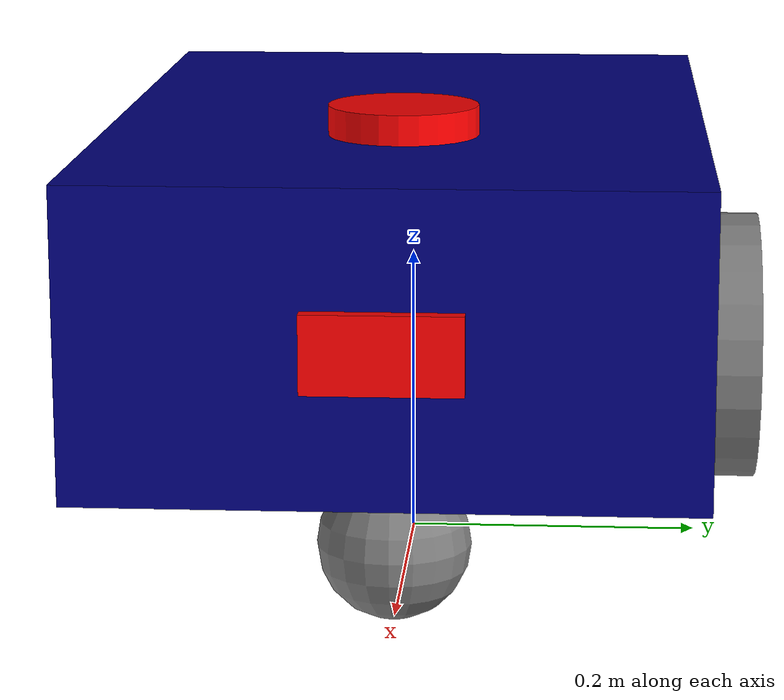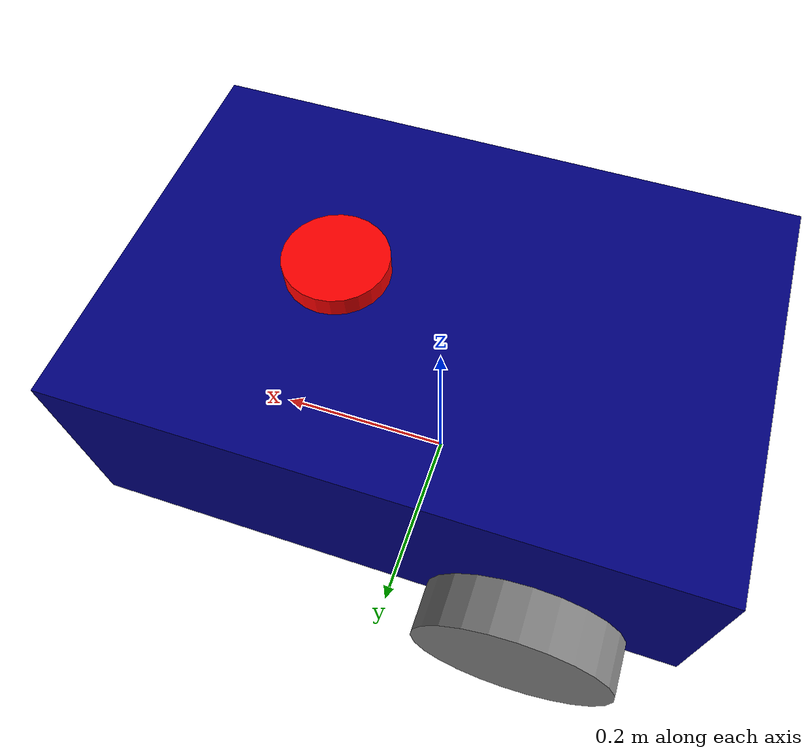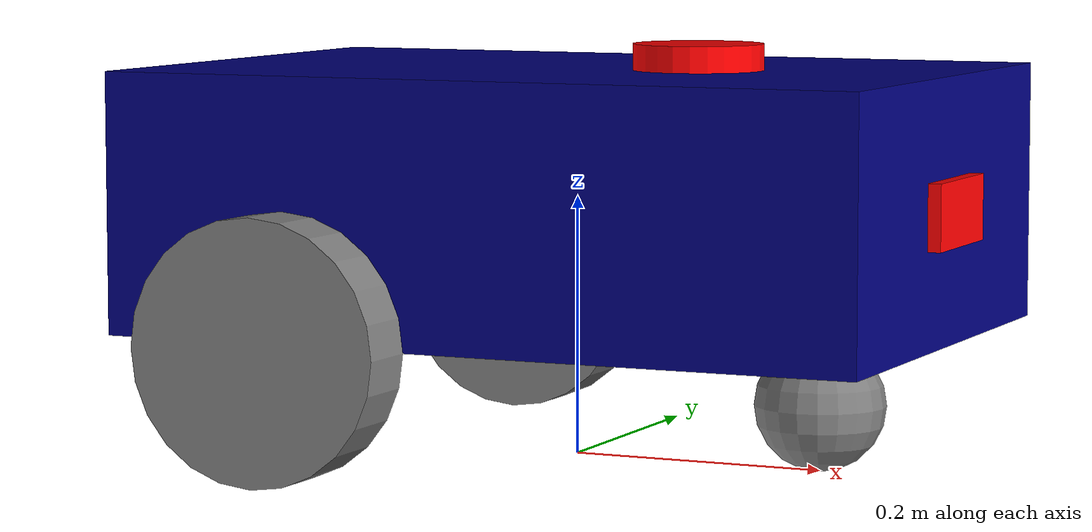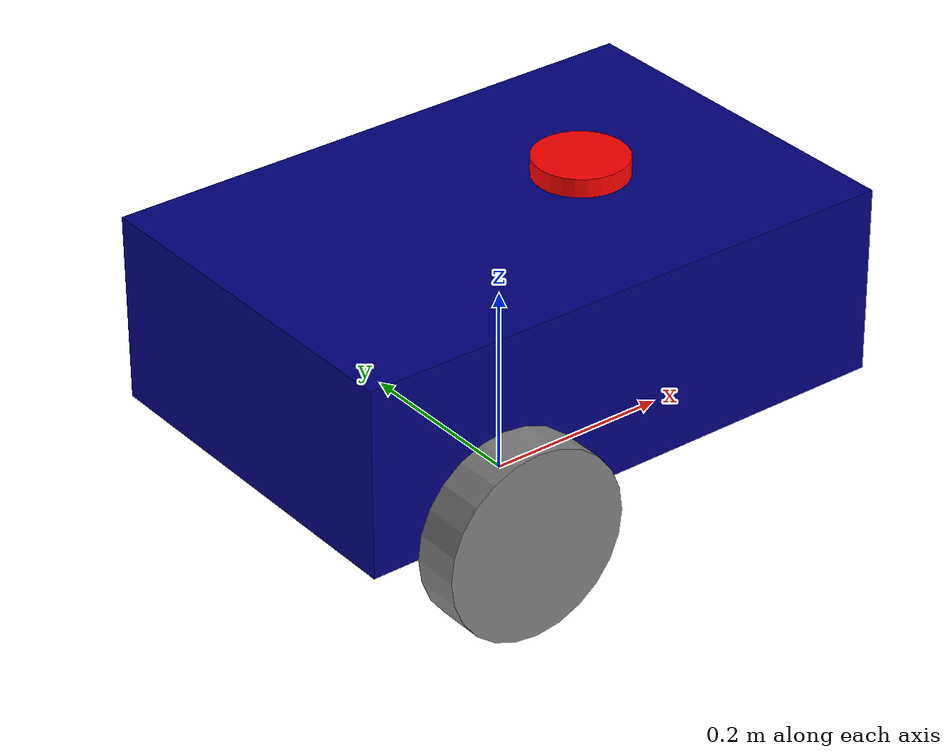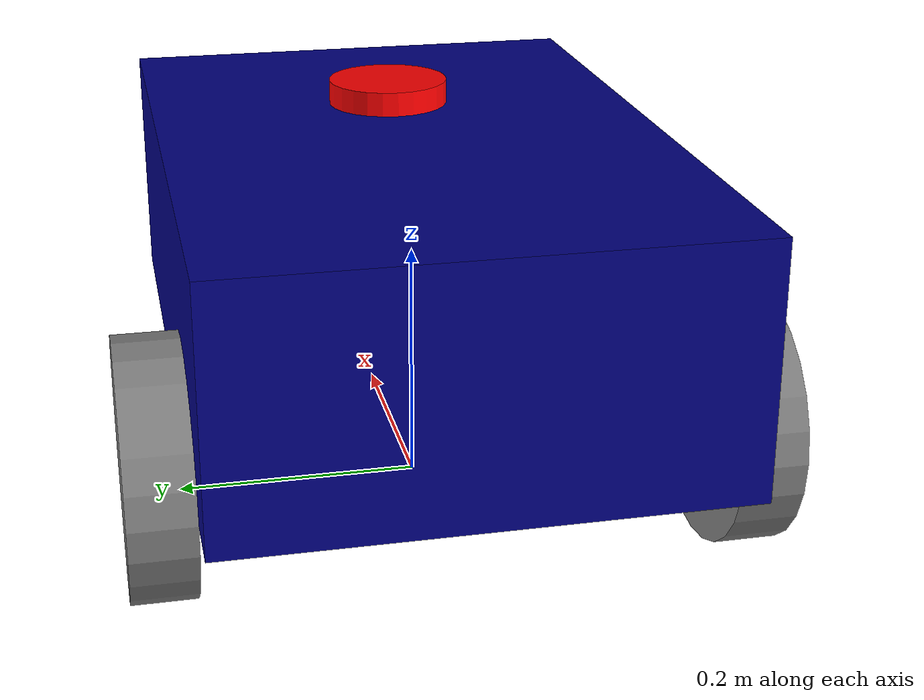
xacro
<?xml version="1.0"?>
<robot name="my_robot" xmlns:xacro="http://www.ros.org/wiki/xacro">
    <xacro:arg name="use_ros2_control" default="true" />
    <xacro:if value="$(arg use_ros2_control)" >
        <xacro:include filename="ros2_control.xacro" />
    </xacro:if>
    <xacro:unless value="$(arg use_ros2_control)" >
        <xacro:include filename="mobile_base_gazebo.xacro" />
    </xacro:unless>

    <xacro:include filename="common_properties.xacro" />
    <xacro:include filename="inertial_macros.xacro" />
    <xacro:include filename="mobile_base.xacro" />

    <xacro:include filename="lidar.xacro" />

    <xacro:include filename="camera.xacro" />

</robot>

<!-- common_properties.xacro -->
<robot xmlns:xacro="http://www.ros.org/wiki/xacro">

    <material name="blue">
        <color rgba="0 0 0.5 1" />
    </material>

    <material name="grey">
        <color rgba="0.5 0.5 0.5 1" />
    </material>

     <material name="red">
        <color rgba="1 0 0 1" />
    </material>

    <xacro:macro name="box_inertia" params="m l w h xyz rpy">
        <inertial>
            <origin xyz="${xyz}" rpy="${rpy}" />
            <mass value="${m}" />
            <inertia ixx="${(m/12) * (h*h + l*l)}" ixy="0" ixz="0"
                     iyy="${(m/12) * (w*w + l*l)}" iyz="0"
                     izz="${(m/12) * (w*w + h*h)}" />
        </inertial>
    </xacro:macro>

    <xacro:macro name="cylinder_inertia" params="m r h xyz rpy">
        <inertial>
            <origin xyz="${xyz}" rpy="${rpy}" />
            <mass value="${m}" />
            <inertia ixx="${(m/12) * (3*r*r + h*h)}" ixy="0" ixz="0"
                     iyy="${(m/12) * (3*r*r + h*h)}" iyz="0"
                     izz="${(m/2) * (r*r)}" />
        </inertial>
    </xacro:macro>

    <xacro:macro name="sphere_inertia" params="m r xyz rpy">
        <inertial>
            <origin xyz="${xyz}" rpy="${rpy}" />
            <mass value="${m}" />
            <inertia ixx="${(2/5) * m * r * r}" ixy="0" ixz="0"
                     iyy="${(2/5) * m * r * r}" iyz="0"
                     izz="${(2/5) * m * r * r}" />
        </inertial>
    </xacro:macro>

</robot>

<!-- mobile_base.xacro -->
<robot xmlns:xacro="http://www.ros.org/wiki/xacro">

    <xacro:property name="base_length" value="0.6" />
    <xacro:property name="base_width" value="0.4" />
    <xacro:property name="base_height" value="0.2" />
    <xacro:property name="wheel_radius" value="0.1" />
    <xacro:property name="wheel_length" value="0.05" />

    <link name="base_footprint" />

    <link name="base_link">
        <visual>
            <geometry>
                <box size="${base_length} ${base_width} ${base_height}" />
            </geometry>
            <origin xyz="0 0 ${base_height / 2.0}" rpy="0 0 0" />
            <material name="blue" />
        </visual>
        <collision>
            <geometry>
                <box size="${base_length} ${base_width} ${base_height}" />
            </geometry>
            <origin xyz="0 0 ${base_height / 2.0}" rpy="0 0 0" />
        </collision>
        <xacro:box_inertia m="5.0" l="${2*base_length}" w="${2*base_width}" h="${2*base_height}"
                           xyz="0 0 ${base_height / 2.0}" rpy="0 0 0" />
    </link>

    <xacro:macro name="wheel_link" params="prefix">
        <link name="${prefix}_wheel_link">
            <visual>
                <geometry>
                    <cylinder radius="${wheel_radius}" length="${wheel_length}" />
                </geometry>
                <origin xyz="0 0 0" rpy="${pi / 2.0} 0 0" />
                <material name="grey" />
            </visual>
            <collision>
                <geometry>
                    <cylinder radius="${wheel_radius}" length="${wheel_length}" />
                </geometry>
                <origin xyz="0 0 0" rpy="${pi / 2.0} 0 0" />
            </collision>
            <xacro:cylinder_inertia m="1.0" r="${2*wheel_radius}" h="${2*wheel_length}"
                                    xyz="0 0 0" rpy="${pi / 2.0} 0 0" />
        </link>
    </xacro:macro>

    <xacro:wheel_link prefix="right" />
    <xacro:wheel_link prefix="left" />

    <link name="caster_wheel_link">
        <visual>
            <geometry>
                <sphere radius="${wheel_radius / 2.0}" />
            </geometry>
            <origin xyz="0 0 0" rpy="0 0 0" />
            <material name="grey" />
        </visual>
        <collision>
            <geometry>
                <sphere radius="${wheel_radius / 2.0}" />
            </geometry>
            <origin xyz="0 0 0" rpy="0 0 0" />
        </collision>
        <xacro:sphere_inertia m="0.5" r="${2*wheel_radius / 2.0}"
                              xyz="0 0 0" rpy="0 0 0" />
    </link>

    <joint name="base_joint" type="fixed">
        <parent link="base_footprint" />
        <child link="base_link" />
        <origin xyz="0 0 ${wheel_radius}" rpy="0 0 0"/>
    </joint>

    <joint name="right_wheel_joint" type="continuous">
        <parent link="base_link" />
        <child link="right_wheel_link" />
        <origin xyz="${-base_length / 4.0} ${-(base_width + wheel_length) / 2.0} 0" rpy="0 0 0" />
        <axis xyz="0 1 0" />
    </joint>

    <joint name="left_wheel_joint" type="continuous">
        <parent link="base_link" />
        <child link="left_wheel_link" />
        <origin xyz="${-base_length / 4.0} ${(base_width + wheel_length) / 2.0} 0" rpy="0 0 0" />
        <axis xyz="0 1 0" />
    </joint>

    <joint name="base_caster_wheel_joint" type="fixed">
        <parent link="base_link" />
        <child link="caster_wheel_link" />
        <origin xyz="${base_length / 3.0} 0 ${-wheel_radius / 2.0}" rpy="0 0 0" />
    </joint>

</robot>

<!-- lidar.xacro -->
<robot xmlns:xacro="http://www.ros.org/wiki/xacro">
    <joint name="laser_joint" type="fixed">
        <parent link="base_link"/>
        <child link="laser_frame"/>
        <origin xyz="0.1 0 0.2" rpy="0 0 0"/>
    </joint>

    <link name="laser_frame">
        <visual>
            <geometry>
                <cylinder radius="0.05" length="0.04"/>
            </geometry>
            <material name="red"/>
        </visual>
        <collision>
            <geometry>
                <cylinder radius="0.05" length="0.04"/>
            </geometry>
        </collision>
        <xacro:inertial_cylinder mass="0.1" length="0.04" radius="0.05">
            <origin xyz="0 0 0" rpy="0 0 0"/>
        </xacro:inertial_cylinder>
    </link>

    <gazebo reference="laser_frame">
        <material>Gazebo/Red</material>

        <sensor name="laser" type="ray">
            <pose> 0 0 0 0 0 0 </pose>
            <visualize>true</visualize>
            <update_rate>10</update_rate>
            <ray>
                <scan>
                    <horizontal>
                        <samples>360</samples>
                        <min_angle>-3.14</min_angle>
                        <max_angle>3.14</max_angle>
                    </horizontal>
                </scan>
                <range>
                    <min>0.3</min>
                    <max>12</max>
                </range>
            </ray>
            <plugin name="laser_controller" filename="libgazebo_ros_ray_sensor.so">
                <ros>
                    <argument>~/out:=scan</argument>
                </ros>
                <output_type>sensor_msgs/LaserScan</output_type>
                <frame_name>laser_frame</frame_name>
            </plugin>
        </sensor>
    </gazebo>

</robot>

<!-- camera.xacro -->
<robot xmlns:xacro="http://www.ros.org/wiki/xacro">

    <xacro:property name="camera_length" value="0.01" />
    <xacro:property name="camera_width" value="0.1" />
    <xacro:property name="camera_height" value="0.05" />

    <link name="camera_link">
        <visual>
            <geometry>
                <box size="${camera_length} ${camera_width} ${camera_height}" />
            </geometry>
            <material name="red" />
        </visual>
        <collision>
            <geometry>
                <box size="${camera_length} ${camera_width} ${camera_height}" />
            </geometry>
        </collision>
        <xacro:box_inertia m="0.1" l="${camera_length}" w="${camera_width}" h="${camera_height}"
                           xyz="0 0 0" rpy="0 0 0" />
    </link>

    <joint name="base_camera_joint" type="fixed">
        <parent link="base_link" />
        <child link="camera_link" />
        <origin xyz="${(base_length + camera_length) / 2.0} 0 ${base_height / 2.0}" rpy="0 0 0" />
    </joint>

    <gazebo reference="camera_link">
        <material>Gazebo/Red</material>
        <sensor name="camera_sensor" type="camera">
            <pose>0 0 0 0 0 0</pose>
            <visualize>true</visualize>
            <update_rate>10.0</update_rate>
            <plugin name="camera_controller" filename="libgazebo_ros_camera.so">
                <frame_name>camera_link</frame_name>
            </plugin>
        </sensor>
    </gazebo>

</robot>
